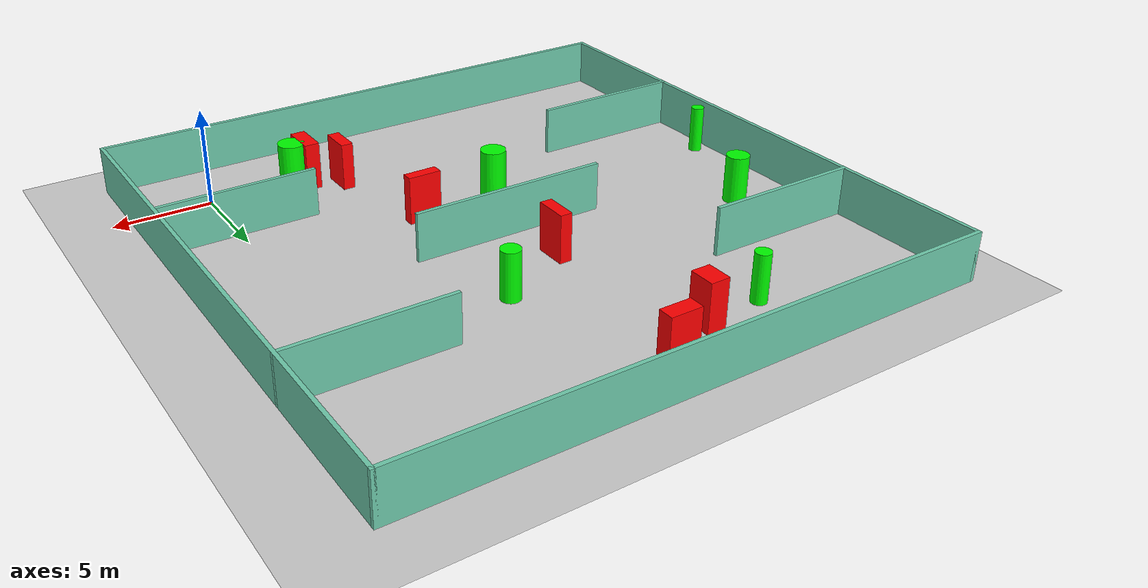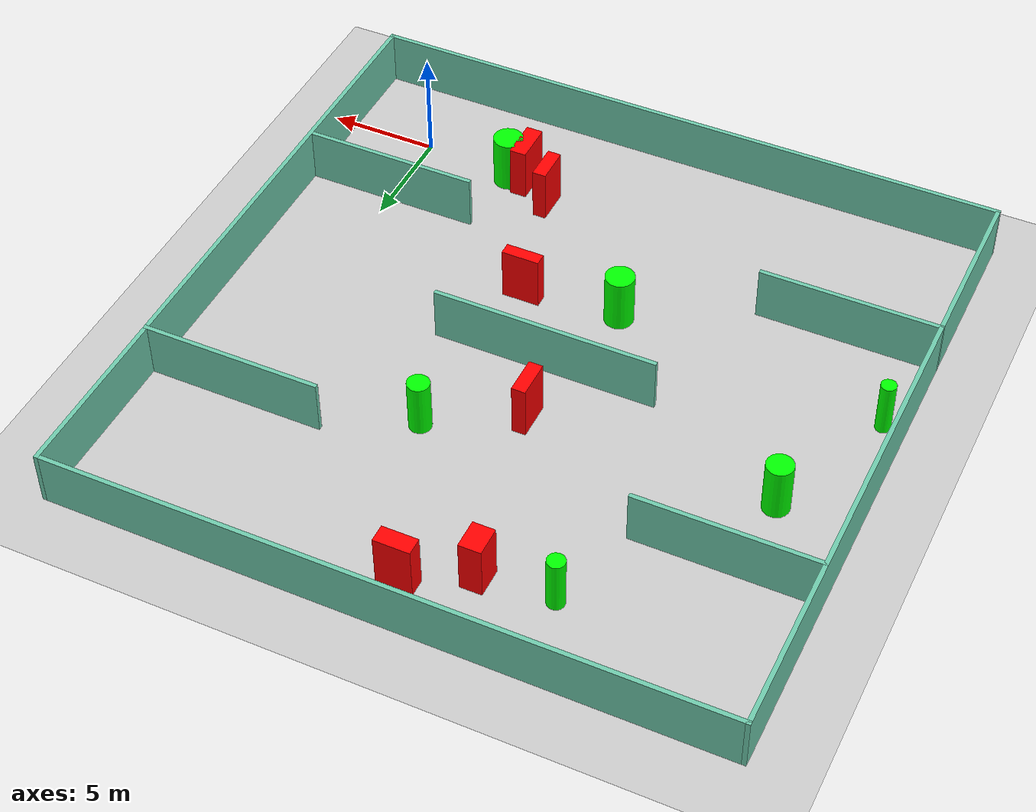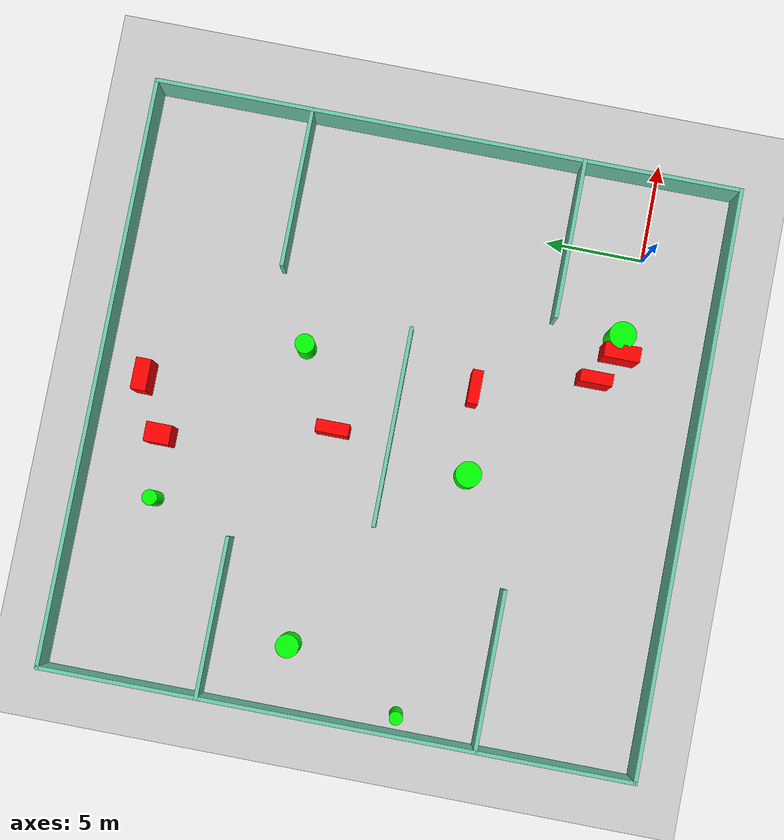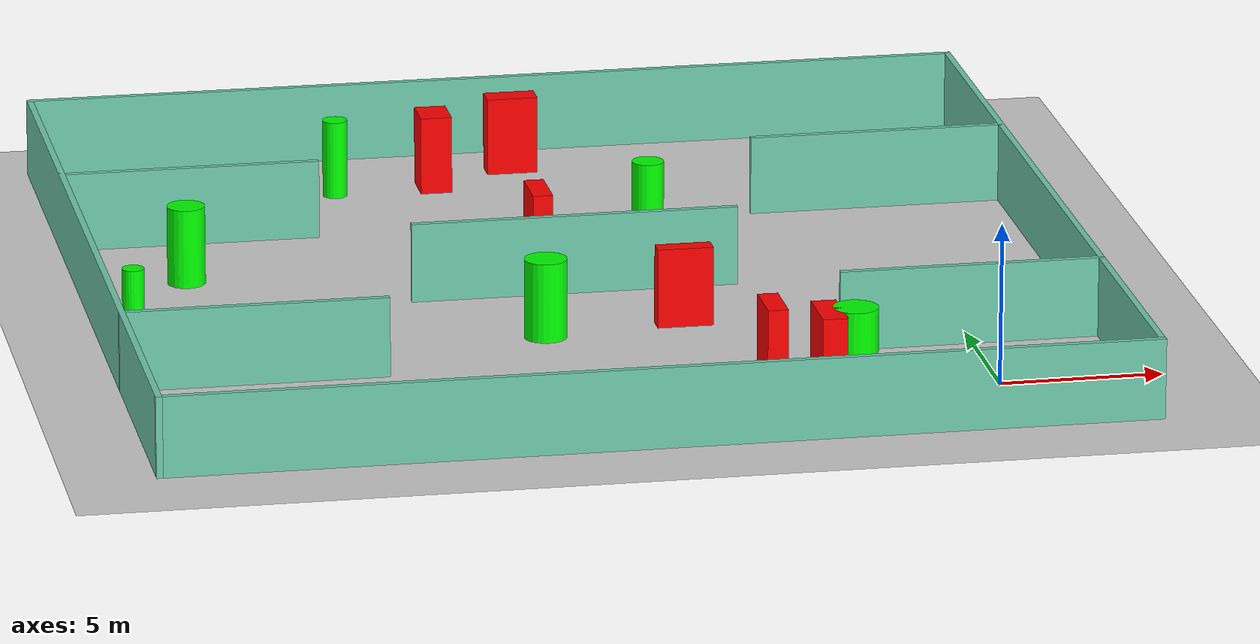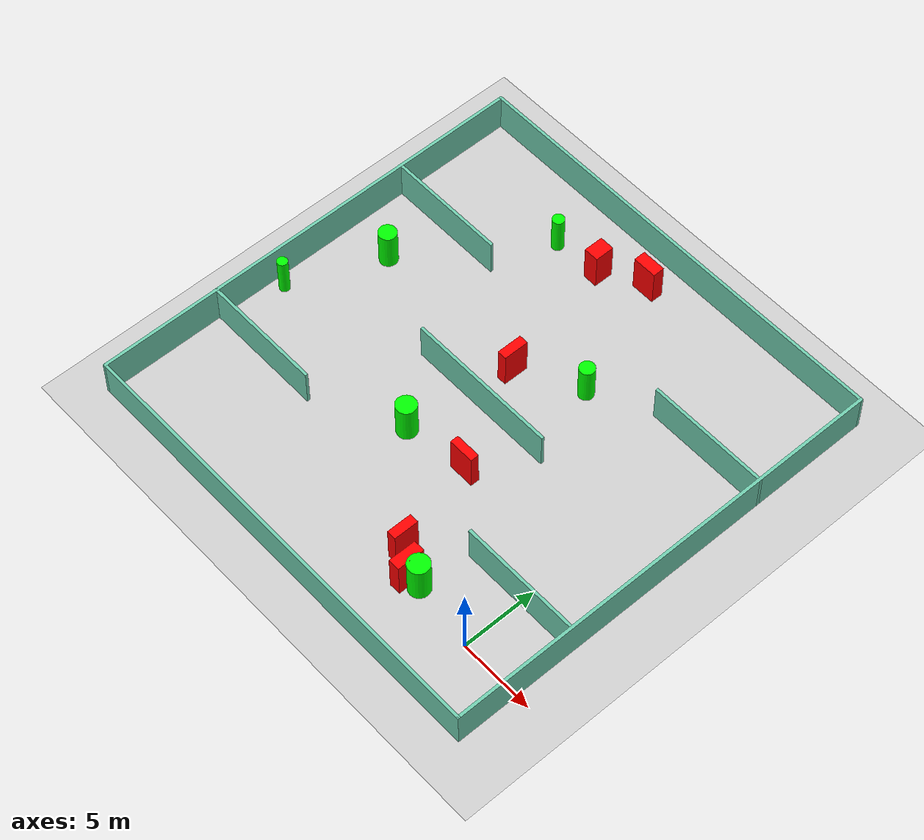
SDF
<sdf version="1.7">
 <world name="default">
  <light name="sun" type="directional">
   <pose>0 0 10 0 -0 0</pose>
   <diffuse>0.8 0.8 0.8 1</diffuse>
   <specular>0.2 0.2 0.2 1</specular>
   <attenuation>
    <range>1000</range>
    <constant>0.9</constant>
    <linear>0.01</linear>
    <quadratic>0.001</quadratic>
   </attenuation>
   <direction>-0.5 0.1 -0.9</direction>
   <spot><inner_angle>0</inner_angle><outer_angle>0</outer_angle><falloff>0</falloff></spot>
  </light>
  <model name="ground_plane">
   <static>1</static>
   <link name="link">
    <collision name="collision">
     <geometry><plane><normal>0 0 1</normal><size>100 100</size></plane></geometry>
     <surface>
      <contact><collide_bitmask>65535</collide_bitmask></contact>
      <friction><ode><mu>100</mu><mu2>50</mu2></ode></friction>
     </surface>
    </collision>
    <visual name="visual">
     <cast_shadows>0</cast_shadows>
     <geometry><plane><normal>0 0 1</normal><size>100 100</size></plane></geometry>
     <material>
      <script><uri>file://media/materials/scripts/gazebo.material</uri><name>Gazebo/Grey</name></script>
     </material>
    </visual>
   </link>
  </model>
  <gravity>0 0 -9.8</gravity>
  <magnetic_field>6e-06 2.3e-05 -4.2e-05</magnetic_field>
  <atmosphere type="adiabatic"/>
  <physics type="ode">
   <max_step_size>0.001</max_step_size>
   <real_time_factor>1</real_time_factor>
   <real_time_update_rate>1000</real_time_update_rate>
  </physics>
  <scene><ambient>0.4 0.4 0.4 1</ambient><background>0.7 0.7 0.7 1</background><shadows>1</shadows></scene>
  <spherical_coordinates>
   <surface_model>EARTH_WGS84</surface_model>
   <latitude_deg>0</latitude_deg>
   <longitude_deg>0</longitude_deg>
   <elevation>0</elevation>
   <heading_deg>0</heading_deg>
  </spherical_coordinates>
  <model name="my_base_walls">
   <link name="Wall_10">
    <collision name="Wall_10_Collision">
     <geometry><box><size>8.2 0.2 2.5</size></box></geometry>
     <pose>0 0 1.25 0 -0 0</pose>
    </collision>
    <visual name="Wall_10_Visual">
     <pose>0 0 1.25 0 -0 0</pose>
     <geometry><box><size>8.2 0.2 2.5</size></box></geometry>
     <material>
      <script><uri>file://media/materials/scripts/gazebo.material</uri><name>Gazebo/Grey</name></script>
      <ambient>0.435294 0.796078 0.67451 1</ambient>
     </material>
     <meta><layer>0</layer></meta>
    </visual>
    <pose>-11 -7 0 0 -0 0</pose>
   </link>
   <link name="Wall_12">
    <collision name="Wall_12_Collision">
     <geometry><box><size>8.2 0.2 2.5</size></box></geometry>
     <pose>0 0 1.25 0 -0 0</pose>
    </collision>
    <visual name="Wall_12_Visual">
     <pose>0 0 1.25 0 -0 0</pose>
     <geometry><box><size>8.2 0.2 2.5</size></box></geometry>
     <material>
      <script><uri>file://media/materials/scripts/gazebo.material</uri><name>Gazebo/Grey</name></script>
      <ambient>0.435294 0.796078 0.67451 1</ambient>
     </material>
     <meta><layer>0</layer></meta>
    </visual>
    <pose>-11 7 0 0 -0 0</pose>
   </link>
   <link name="Wall_14">
    <collision name="Wall_14_Collision">
     <geometry><box><size>8.2 0.2 2.5</size></box></geometry>
     <pose>0 0 1.25 0 -0 0</pose>
    </collision>
    <visual name="Wall_14_Visual">
     <pose>0 0 1.25 0 -0 0</pose>
     <geometry><box><size>8.2 0.2 2.5</size></box></geometry>
     <material>
      <script><uri>file://media/materials/scripts/gazebo.material</uri><name>Gazebo/Grey</name></script>
      <ambient>0.435294 0.796078 0.67451 1</ambient>
     </material>
     <meta><layer>0</layer></meta>
    </visual>
    <pose>11 7 0 0 -0 3.14159</pose>
   </link>
   <link name="Wall_16">
    <collision name="Wall_16_Collision">
     <geometry><box><size>10.2 0.2 2.5</size></box></geometry>
     <pose>0 0 1.25 0 -0 0</pose>
    </collision>
    <visual name="Wall_16_Visual">
     <pose>0 0 1.25 0 -0 0</pose>
     <geometry><box><size>10.2 0.2 2.5</size></box></geometry>
     <material>
      <script><uri>file://media/materials/scripts/gazebo.material</uri><name>Gazebo/Grey</name></script>
      <ambient>0.435294 0.796078 0.67451 1</ambient>
     </material>
     <meta><layer>0</layer></meta>
    </visual>
    <pose>0 0 0 0 -0 3.14159</pose>
   </link>
   <link name="Wall_2">
    <collision name="Wall_2_Collision">
     <geometry><box><size>30.2 0.2 2.5</size></box></geometry>
     <pose>0 0 1.25 0 -0 0</pose>
    </collision>
    <visual name="Wall_2_Visual">
     <pose>0 0 1.25 0 -0 0</pose>
     <geometry><box><size>30.2 0.2 2.5</size></box></geometry>
     <material>
      <script><uri>file://media/materials/scripts/gazebo.material</uri><name>Gazebo/Grey</name></script>
      <ambient>0.435294 0.796078 0.67451 1</ambient>
     </material>
     <meta><layer>0</layer></meta>
    </visual>
    <pose>0 -15 0 0 -0 3.14159</pose>
   </link>
   <link name="Wall_3">
    <collision name="Wall_3_Collision">
     <geometry><box><size>30.2 0.2 2.5</size></box></geometry>
     <pose>0 0 1.25 0 -0 0</pose>
    </collision>
    <visual name="Wall_3_Visual">
     <pose>0 0 1.25 0 -0 0</pose>
     <geometry><box><size>30.2 0.2 2.5</size></box></geometry>
     <material>
      <script><uri>file://media/materials/scripts/gazebo.material</uri><name>Gazebo/Grey</name></script>
      <ambient>0.435294 0.796078 0.67451 1</ambient>
     </material>
     <meta><layer>0</layer></meta>
    </visual>
    <pose>-15 0 0 0 -0 1.5708</pose>
   </link>
   <link name="Wall_4">
    <collision name="Wall_4_Collision">
     <geometry><box><size>30.2 0.2 2.5</size></box></geometry>
     <pose>0 0 1.25 0 -0 0</pose>
    </collision>
    <visual name="Wall_4_Visual">
     <pose>0 0 1.25 0 -0 0</pose>
     <geometry><box><size>30.2 0.2 2.5</size></box></geometry>
     <material>
      <script><uri>file://media/materials/scripts/gazebo.material</uri><name>Gazebo/Grey</name></script>
      <ambient>0.435294 0.796078 0.67451 1</ambient>
     </material>
     <meta><layer>0</layer></meta>
    </visual>
    <pose>0 15 0 0 -0 0</pose>
   </link>
   <link name="Wall_6">
    <collision name="Wall_6_Collision">
     <geometry><box><size>30.2 0.2 2.5</size></box></geometry>
     <pose>0 0 1.25 0 -0 0</pose>
    </collision>
    <visual name="Wall_6_Visual">
     <pose>0 0 1.25 0 -0 0</pose>
     <geometry><box><size>30.2 0.2 2.5</size></box></geometry>
     <material>
      <script><uri>file://media/materials/scripts/gazebo.material</uri><name>Gazebo/Grey</name></script>
      <ambient>0.435294 0.796078 0.67451 1</ambient>
     </material>
     <meta><layer>0</layer></meta>
    </visual>
    <pose>15 0 0 0 -0 1.5708</pose>
   </link>
   <link name="Wall_8">
    <collision name="Wall_8_Collision">
     <geometry><box><size>8.2 0.2 2.5</size></box></geometry>
     <pose>0 0 1.25 0 -0 0</pose>
    </collision>
    <visual name="Wall_8_Visual">
     <pose>0 0 1.25 0 -0 0</pose>
     <geometry><box><size>8.2 0.2 2.5</size></box></geometry>
     <material>
      <script><uri>file://media/materials/scripts/gazebo.material</uri><name>Gazebo/Grey</name></script>
      <ambient>0.435294 0.796078 0.67451 1</ambient>
     </material>
     <meta><layer>0</layer></meta>
    </visual>
    <pose>11 -7 0 0 -0 3.14159</pose>
   </link>
   <static>1</static>
   <pose>-11 11 0 0 -0 0</pose>
  </model>
  <model name="cylinder1">
   <static>1</static>
   <link name="link">
    <inertial>
     <mass>1</mass>
     <inertia><ixx>0.5</ixx><ixy>0</ixy><ixz>0</ixz><iyy>0.5</iyy><iyz>0</iyz><izz>1</izz></inertia>
    </inertial>
    <collision name="collision">
     <geometry><cylinder><radius>0.6911501214080245</radius><length>2.5</length></cylinder></geometry>
    </collision>
    <visual name="visual">
     <geometry><cylinder><radius>0.6911501214080245</radius><length>2.5</length></cylinder></geometry>
     <material>
      <ambient>0 1 0 1</ambient>
      <diffuse>0 1 0 1</diffuse>
      <specular>0.1 0.1 0.1 1</specular>
      <emissive>0 0 0 0</emissive>
     </material>
    </visual>
   </link>
   <pose>-4.336099746718547 0.5539779967733889 1.25 0 0 0</pose>
  </model>
  <model name="cylinder2">
   <static>1</static>
   <link name="link">
    <inertial>
     <mass>1</mass>
     <inertia><ixx>0.5</ixx><ixy>0</ixy><ixz>0</ixz><iyy>0.5</iyy><iyz>0</iyz><izz>1</izz></inertia>
    </inertial>
    <collision name="collision">
     <geometry><cylinder><radius>0.500475394673871</radius><length>2.5</length></cylinder></geometry>
    </collision>
    <visual name="visual">
     <geometry><cylinder><radius>0.500475394673871</radius><length>2.5</length></cylinder></geometry>
     <material>
      <ambient>0 1 0 1</ambient>
      <diffuse>0 1 0 1</diffuse>
      <specular>0.1 0.1 0.1 1</specular>
      <emissive>0 0 0 0</emissive>
     </material>
    </visual>
   </link>
   <pose>-7.751128133569939 16.09511873377887 1.25 0 0 0</pose>
  </model>
  <model name="cylinder3">
   <static>1</static>
   <link name="link">
    <inertial>
     <mass>1</mass>
     <inertia><ixx>0.5</ixx><ixy>0</ixy><ixz>0</ixz><iyy>0.5</iyy><iyz>0</iyz><izz>1</izz></inertia>
    </inertial>
    <collision name="collision">
     <geometry><cylinder><radius>0.3415186716088602</radius><length>2.5</length></cylinder></geometry>
    </collision>
    <visual name="visual">
     <geometry><cylinder><radius>0.3415186716088602</radius><length>2.5</length></cylinder></geometry>
     <material>
      <ambient>0 1 0 1</ambient>
      <diffuse>0 1 0 1</diffuse>
      <specular>0.1 0.1 0.1 1</specular>
      <emissive>0 0 0 0</emissive>
     </material>
    </visual>
   </link>
   <pose>-25.09848453587957 8.12709093447793 1.25 0 0 0</pose>
  </model>
  <model name="cylinder4">
   <static>1</static>
   <link name="link">
    <inertial>
     <mass>1</mass>
     <inertia><ixx>0.5</ixx><ixy>0</ixy><ixz>0</ixz><iyy>0.5</iyy><iyz>0</iyz><izz>1</izz></inertia>
    </inertial>
    <collision name="collision">
     <geometry><cylinder><radius>0.5932540469375538</radius><length>2.5</length></cylinder></geometry>
    </collision>
    <visual name="visual">
     <geometry><cylinder><radius>0.5932540469375538</radius><length>2.5</length></cylinder></geometry>
     <material>
      <ambient>0 1 0 1</ambient>
      <diffuse>0 1 0 1</diffuse>
      <specular>0.1 0.1 0.1 1</specular>
      <emissive>0 0 0 0</emissive>
     </material>
    </visual>
   </link>
   <pose>-22.65201710361065 14.066819689428002 1.25 0 0 0</pose>
  </model>
  <model name="cylinder5">
   <static>1</static>
   <link name="link">
    <inertial>
     <mass>1</mass>
     <inertia><ixx>0.5</ixx><ixy>0</ixy><ixz>0</ixz><iyy>0.5</iyy><iyz>0</iyz><izz>1</izz></inertia>
    </inertial>
    <collision name="collision">
     <geometry><cylinder><radius>0.6606018121501928</radius><length>2.5</length></cylinder></geometry>
    </collision>
    <visual name="visual">
     <geometry><cylinder><radius>0.6606018121501928</radius><length>2.5</length></cylinder></geometry>
     <material>
      <ambient>0 1 0 1</ambient>
      <diffuse>0 1 0 1</diffuse>
      <specular>0.1 0.1 0.1 1</specular>
      <emissive>0 0 0 0</emissive>
     </material>
    </visual>
   </link>
   <pose>-12.638937195722578 6.845157207098634 1.25 0 0 0</pose>
  </model>
  <model name="cylinder6">
   <static>1</static>
   <link name="link">
    <inertial>
     <mass>1</mass>
     <inertia><ixx>0.5</ixx><ixy>0</ixy><ixz>0</ixz><iyy>0.5</iyy><iyz>0</iyz><izz>1</izz></inertia>
    </inertial>
    <collision name="collision">
     <geometry><cylinder><radius>0.39260021735997847</radius><length>2.5</length></cylinder></geometry>
    </collision>
    <visual name="visual">
     <geometry><cylinder><radius>0.39260021735997847</radius><length>2.5</length></cylinder></geometry>
     <material>
      <ambient>0 1 0 1</ambient>
      <diffuse>0 1 0 1</diffuse>
      <specular>0.1 0.1 0.1 1</specular>
      <emissive>0 0 0 0</emissive>
     </material>
    </visual>
   </link>
   <pose>-16.734997822835563 22.185287874398213 1.25 0 0 0</pose>
  </model>
  <model name="box1">
   <static>1</static>
   <link name="link">
    <inertial>
     <mass>1</mass>
     <inertia><ixx>0.083</ixx><ixy>0</ixy><ixz>0</ixz><iyy>0.083</iyy><iyz>0</iyz><izz>0.083</izz></inertia>
    </inertial>
    <collision name="collision">
     <geometry><box><size>0.6228520297847752 1.6585925024660202 2.5</size></box></geometry>
    </collision>
    <visual name="visual">
     <geometry><box><size>0.6228520297847752 1.6585925024660202 2.5</size></box></geometry>
     <material>
      <ambient>1 0 0 1</ambient>
      <diffuse>1 0 0 1</diffuse>
      <specular>0.1 0.1 0.1 1</specular>
      <emissive>0 0 0 0</emissive>
     </material>
    </visual>
    <sensor name="my_contact" type="contact">
     <contact><collision>box_collision</collision><topic>__default_topic__</topic></contact>
    </sensor>
   </link>
   <pose>-6.678697012749435 1.4497085899402853 1.25 0 0 0</pose>
  </model>
  <model name="box2">
   <static>1</static>
   <link name="link">
    <inertial>
     <mass>1</mass>
     <inertia><ixx>0.083</ixx><ixy>0</ixy><ixz>0</ixz><iyy>0.083</iyy><iyz>0</iyz><izz>0.083</izz></inertia>
    </inertial>
    <collision name="collision">
     <geometry><box><size>1.7197126666774194 0.5620786046278197 2.5</size></box></geometry>
    </collision>
    <visual name="visual">
     <geometry><box><size>1.7197126666774194 0.5620786046278197 2.5</size></box></geometry>
     <material>
      <ambient>1 0 0 1</ambient>
      <diffuse>1 0 0 1</diffuse>
      <specular>0.1 0.1 0.1 1</specular>
      <emissive>0 0 0 0</emissive>
     </material>
    </visual>
    <sensor name="my_contact" type="contact">
     <contact><collision>box_collision</collision><topic>__default_topic__</topic></contact>
    </sensor>
   </link>
   <pose>-8.270495350185517 7.315324446880105 1.25 0 0 0</pose>
  </model>
  <model name="box3">
   <static>1</static>
   <link name="link">
    <inertial>
     <mass>1</mass>
     <inertia><ixx>0.083</ixx><ixy>0</ixy><ixz>0</ixz><iyy>0.083</iyy><iyz>0</iyz><izz>0.083</izz></inertia>
    </inertial>
    <collision name="collision">
     <geometry><box><size>1.6191556125118993 0.7846952419793015 2.5</size></box></geometry>
    </collision>
    <visual name="visual">
     <geometry><box><size>1.6191556125118993 0.7846952419793015 2.5</size></box></geometry>
     <material>
      <ambient>1 0 0 1</ambient>
      <diffuse>1 0 0 1</diffuse>
      <specular>0.1 0.1 0.1 1</specular>
      <emissive>0 0 0 0</emissive>
     </material>
    </visual>
    <sensor name="my_contact" type="contact">
     <contact><collision>box_collision</collision><topic>__default_topic__</topic></contact>
    </sensor>
   </link>
   <pose>-10.78480611249091 23.83675981591058 1.25 0 0 0</pose>
  </model>
  <model name="box4">
   <static>1</static>
   <link name="link">
    <inertial>
     <mass>1</mass>
     <inertia><ixx>0.083</ixx><ixy>0</ixy><ixz>0</ixz><iyy>0.083</iyy><iyz>0</iyz><izz>0.083</izz></inertia>
    </inertial>
    <collision name="collision">
     <geometry><box><size>0.7675922953778724 1.8360627542760044 2.5</size></box></geometry>
    </collision>
    <visual name="visual">
     <geometry><box><size>0.7675922953778724 1.8360627542760044 2.5</size></box></geometry>
     <material>
      <ambient>1 0 0 1</ambient>
      <diffuse>1 0 0 1</diffuse>
      <specular>0.1 0.1 0.1 1</specular>
      <emissive>0 0 0 0</emissive>
     </material>
    </visual>
    <sensor name="my_contact" type="contact">
     <contact><collision>box_collision</collision><topic>__default_topic__</topic></contact>
    </sensor>
   </link>
   <pose>-5.1653706807323125 0.40976131787015024 1.25 0 0 0</pose>
  </model>
  <model name="box5">
   <static>1</static>
   <link name="link">
    <inertial>
     <mass>1</mass>
     <inertia><ixx>0.083</ixx><ixy>0</ixy><ixz>0</ixz><iyy>0.083</iyy><iyz>0</iyz><izz>0.083</izz></inertia>
    </inertial>
    <collision name="collision">
     <geometry><box><size>0.6247618249014899 1.6915292405105526 2.5</size></box></geometry>
    </collision>
    <visual name="visual">
     <geometry><box><size>0.6247618249014899 1.6915292405105526 2.5</size></box></geometry>
     <material>
      <ambient>1 0 0 1</ambient>
      <diffuse>1 0 0 1</diffuse>
      <specular>0.1 0.1 0.1 1</specular>
      <emissive>0 0 0 0</emissive>
     </material>
    </visual>
    <sensor name="my_contact" type="contact">
     <contact><collision>box_collision</collision><topic>__default_topic__</topic></contact>
    </sensor>
   </link>
   <pose>-11.619356308520937 13.93649568902769 1.25 0 0 0</pose>
  </model>
  <model name="box6">
   <static>1</static>
   <link name="link">
    <inertial>
     <mass>1</mass>
     <inertia><ixx>0.083</ixx><ixy>0</ixy><ixz>0</ixz><iyy>0.083</iyy><iyz>0</iyz><izz>0.083</izz></inertia>
    </inertial>
    <collision name="collision">
     <geometry><box><size>0.9964395490447908 1.2945243246623424 2.5</size></box></geometry>
    </collision>
    <visual name="visual">
     <geometry><box><size>0.9964395490447908 1.2945243246623424 2.5</size></box></geometry>
     <material>
      <ambient>1 0 0 1</ambient>
      <diffuse>1 0 0 1</diffuse>
      <specular>0.1 0.1 0.1 1</specular>
      <emissive>0 0 0 0</emissive>
     </material>
    </visual>
    <sensor name="my_contact" type="contact">
     <contact><collision>box_collision</collision><topic>__default_topic__</topic></contact>
    </sensor>
   </link>
   <pose>-13.528133840076741 22.434252303688933 1.25 0 0 0</pose>
  </model>
 </world>
</sdf>
